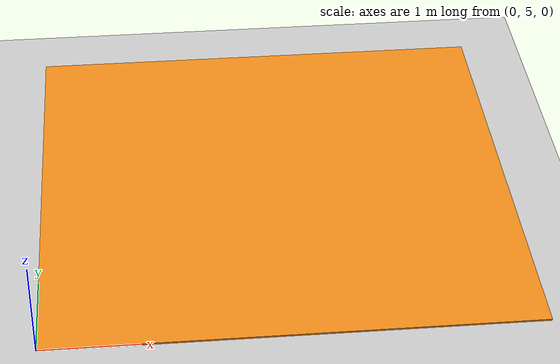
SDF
<?xml version="1.0" ?>
<sdf version="1.5">
  <world name="default">
    <!-- A global light source -->
    <include>
      <uri>model://sun</uri>
    </include>
    <!-- A ground plane -->

    <physics name='default_physics' default='0' type='ode'>
      <gravity>0 0 -9.8066</gravity>
      <ode>
        <solver>
          <type>quick</type>
          <iters>10</iters>
          <sor>1.3</sor>
          <use_dynamic_moi_rescaling>0</use_dynamic_moi_rescaling>
        </solver>
        <constraints>
          <cfm>0</cfm>
          <erp>0.2</erp>
          <contact_max_correcting_vel>100</contact_max_correcting_vel>
          <contact_surface_layer>0.001</contact_surface_layer>
        </constraints>
      </ode>
      <max_step_size>0.004</max_step_size>
      <real_time_factor>1</real_time_factor>
      <real_time_update_rate>250</real_time_update_rate>
      <magnetic_field>6.0e-6 2.3e-5 -4.2e-5</magnetic_field>
    </physics>

    <model name="ground_plane">
      <static>true</static>
      <link name="link">
        <collision name="collision">
          <geometry>
            <plane>
              <normal>0 0 1</normal>
              <size>5000 5000</size>
            </plane>
          </geometry>
          <surface>
            <friction>
              <ode>
                <mu>100</mu>
                <mu2>50</mu2>
              </ode>
            </friction>
          </surface>
        </collision>
        <visual name="runway">
          <pose>000 0 0.005 0 0 0</pose>
          <cast_shadows>false</cast_shadows>
          <geometry>
            <plane>
              <normal>0 0 1</normal>
              <size>1829 45</size>
            </plane>
          </geometry>
          <material>
            <script>
              <uri>file://media/materials/scripts/gazebo.material</uri>
              <name>Gazebo/Runway</name>
            </script>
          </material>
        </visual>

        <visual name="grass">
          <pose>0 0 -0.1 0 0 0</pose>
          <cast_shadows>false</cast_shadows>
          <geometry>
            <plane>
              <normal>0 0 1</normal>
              <size>5000 5000</size>
            </plane>
          </geometry>
          <material>
            <script>
              <uri>file://media/materials/scripts/gazebo.material</uri>
              <name>Gazebo/Grass</name>
            </script>
          </material>
        </visual>

      </link>
    </model>

    <model name="outline">
      <pose>2.5 7.5 0 0 0 0</pose>
      <link name='link'>
        <visual name="base">
          <geometry>
            <box>
              <size>5 5 0.02</size>
            </box>
          </geometry>
          <material>
            <script>
              <name>Gazebo/Orange</name>
              <uri>file://media/materials/scripts/gazebo.material</uri>
            </script>
        </material>
        </visual>
      </link>
      <static>true</static>
    </model>

  </world>
</sdf>
